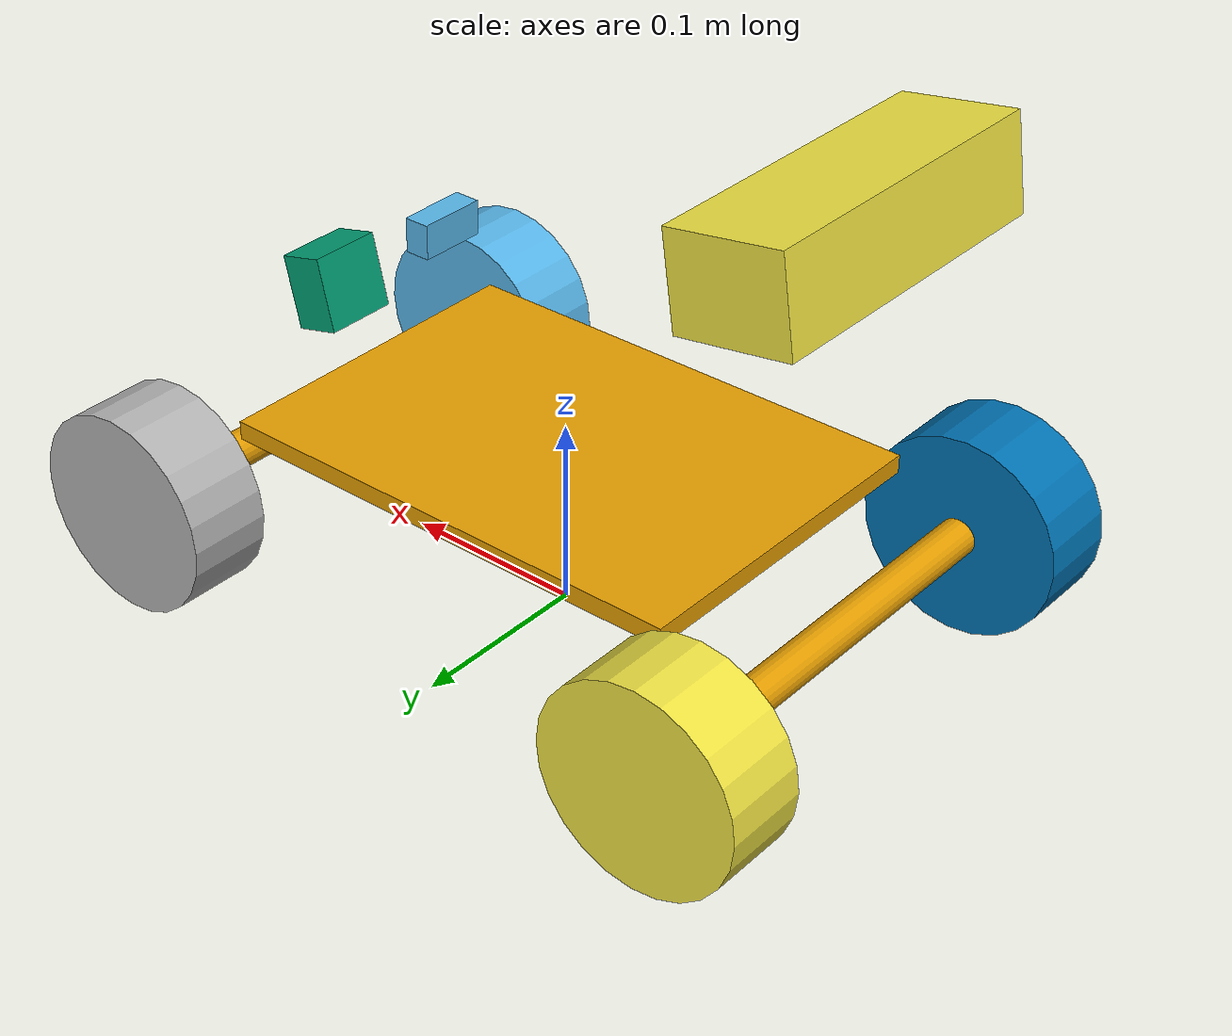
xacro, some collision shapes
<?xml version="1.0"?>
<robot xmlns:xacro="https://www.ros.org/wiki/xacro" name="slash">
  <!-- helper -->
  <xacro:macro name="visual_collision" params="**content">
    <visual>
      <xacro:insert_block name="content" />
    </visual>
    <collision>
      <xacro:insert_block name="content" />
    </collision>
  </xacro:macro>

  <!-- common properties -->
  <xacro:property name="robotname" value="slash" />
  <xacro:property name="width" value="0.296" />
  <xacro:property name="length" value="0.525" />
  <xacro:property name="weight" value="2.16" />

  <!-- chassis properties -->
  <xacro:property name="chassis_ground_clearance" value="0.089" />
  <xacro:property name="chassis_length" value="0.265" />
  <xacro:property name="chassis_width" value="0.185" />
  <xacro:property name="chassis_height" value="0.01" />
  <xacro:property name="chassis_weight" value="${weight - 4 * wheel_weight}" />

  <!-- axle properties -->
  <xacro:property name="axle_radius" value="0.01" />

  <!-- wheel properties -->
  <xacro:property name="wheel_wheelbase" value="0.325" />
  <xacro:property name="wheel_radius" value=".054" />
  <xacro:property name="wheel_width" value=".045" />
  <xacro:property name="wheel_weight" value="0.2" />

  <!-- camera properties -->
  <xacro:property name="camera_pos" value="0.155 0 0.127" />
  <xacro:property name="camera_height" value="0.04" />
  <xacro:property name="camera_width" value="0.04" />
  <xacro:property name="camera_length" value="0.025" />
  <xacro:property name="camera_weight" value="0.07" />

  <!-- 3D camera properties -->
  <xacro:property name="depth_camera_pos" value="${-chassis_width+0.03} 0 ${chassis_ground_clearance + 0.175}" />

  <!-- ultrasound sensor properties -->
  <xacro:property name="ultrasound_pos" value="0.155 -0.08 0.127" />
  <xacro:property name="ultrasound_height" value="0.02" />
  <xacro:property name="ultrasound_width" value="0.04" />
  <xacro:property name="ultrasound_length" value="0.015" />
  <xacro:property name="ultrasound_weight" value="0.07" />

  <!-- IMU -->
  <xacro:property name="imu_pos" value="-0.09 -0.01 0.135" />

  <!-- WheelEncoder -->
  <xacro:property name="wheel_encoder_pos" value="${-wheel_wheelbase / 2} ${-(width - wheel_width) / 2} ${wheel_radius}" />

  <!-- wheel -->
  <xacro:macro name="wheel" params="pos_name pos_x pos_y steering">
    <link name="wheel_${pos_name}">
      <inertial>
        <mass value="${wheel_weight}"/>
        <inertia
          ixx="${(wheel_weight / 12) * (3 * wheel_radius ** 2 + wheel_width ** 2)}" ixy="0.0" ixz="0.0"
          iyy="${(wheel_weight / 12) * (3 * wheel_radius ** 2 + wheel_width ** 2)}" iyz="0.0"
          izz="${(wheel_weight / 12) * (6 * wheel_radius ** 2)}" />
      </inertial>
      <xacro:visual_collision>
        <content>
          <geometry>
            <cylinder length="${wheel_width}" radius="${wheel_radius}" />
          </geometry>
        </content>
      </xacro:visual_collision>
    </link>
    <xacro:if value="${steering}">
      <link name="wheel_${pos_name}_steering_axle">
        <inertial>
          <mass value="0.001" />
          <inertia
            ixx="${(wheel_weight / 12) * (3 * wheel_radius ** 2 + wheel_width ** 2)}" ixy="0.0" ixz="0.0"
            iyy="${(wheel_weight / 12) * (3 * wheel_radius ** 2 + wheel_width ** 2)}" iyz="0.0"
            izz="${(wheel_weight / 12) * (6 * wheel_radius ** 2)}" />
        </inertial>
      </link>
      <joint name="wheel_${pos_name}_steering_joint" type="revolute">
        <origin xyz="${pos_x} ${pos_y} ${wheel_radius}" rpy="1.5707 0 0" />
        <parent link="base_link" />
        <child link="wheel_${pos_name}_steering_axle" />
        <axis xyz="0 1 0" />
        <limit lower="-0.785398163" upper="0.785398163" effort="30" velocity="1.0" />
      </joint>
    </xacro:if>
    <joint name="wheel_${pos_name}_chassis_joint" type="continuous">
      <xacro:if value="${not steering}">
        <origin xyz="${pos_x} ${pos_y} ${wheel_radius}" rpy="1.5707 0 0" />
      </xacro:if>
      <xacro:if value="${steering}">
        <origin xyz="0 0 0" rpy="0 0 0" />
      </xacro:if>
      <xacro:if value="${not steering}">
        <parent link="base_link" />
      </xacro:if>
      <xacro:if value="${steering}">
        <parent link="wheel_${pos_name}_steering_axle" />
      </xacro:if>
      <child link="wheel_${pos_name}" />
      <axis xyz="0 0 -1" />
    </joint>
  </xacro:macro>

  <!-- chassis -->
  <link name="base_link">
    <inertial>
      <origin xyz="0 0 ${chassis_ground_clearance}" rpy="0 0 0" />
      <mass value="${chassis_weight}" />
      <inertia
        ixx="${(chassis_weight / 12) * (chassis_width ** 2 + chassis_height ** 2)}" ixy="0.0" ixz="0.0"
        iyy="${(chassis_weight / 12) * (chassis_length ** 2 + chassis_height ** 2)}" iyz="0.0"
        izz="${(chassis_weight / 12) * (chassis_length ** 2 + chassis_width ** 2)}" />
    </inertial>
    <xacro:visual_collision> <!-- main plate -->
      <content>
        <origin xyz="0 0 ${chassis_ground_clearance}" />
        <geometry>
          <box size="${chassis_length} ${chassis_width} ${chassis_height}"/>
        </geometry>
      </content>
    </xacro:visual_collision>
    <xacro:visual_collision> <!-- rear axle -->
      <content>
        <origin xyz="${-wheel_wheelbase / 2} 0 ${wheel_radius}" rpy="1.5707 0 0" />
        <geometry>
          <cylinder length="${width - 2 * wheel_width}" radius="${axle_radius}" />
        </geometry>
      </content>
    </xacro:visual_collision>
    <xacro:visual_collision> <!-- front axle -->
      <content>
        <origin xyz="${wheel_wheelbase / 2} 0 ${wheel_radius}" rpy="1.5707 0 0" />
        <geometry>
          <cylinder length="${width - 2 * wheel_width}" radius="${axle_radius}" />
        </geometry>
      </content>
    </xacro:visual_collision>
  </link>

  <!-- ultrasound sensor -->
  <link name="ultrasound_link">
    <inertial>
      <origin xyz="0 0 0" rpy="0 0 0" />
      <mass value="${ultrasound_weight}" />
      <inertia
        ixx="${(ultrasound_weight / 12) * (ultrasound_width ** 2 + ultrasound_height ** 2)}" ixy="0.0" ixz="0.0"
        iyy="${(ultrasound_weight / 12) * (ultrasound_length ** 2 + ultrasound_height ** 2)}" iyz="0.0"
        izz="${(ultrasound_weight / 12) * (ultrasound_length ** 2 + ultrasound_width ** 2)}" />
    </inertial>
    <xacro:visual_collision>
      <content>
        <origin xyz="0 0 0" rpy="0 0 0" />
        <geometry>
          <box size="${ultrasound_length} ${ultrasound_width} ${ultrasound_height}" />
        </geometry>
      </content>
    </xacro:visual_collision>
  </link>

  <joint name="ultrasound_joint" type="fixed">
    <origin xyz="${ultrasound_pos}" rpy="0 0 0" />
    <parent link="base_link" />
    <child link="ultrasound_link" />
  </joint>

  <gazebo reference="ultrasound_link">
    <sensor type="ray" name="ultrasound_sensor">
      <pose>0 0 0 0 0 0</pose>
      <always_on>true</always_on>
      <visualize>true</visualize>
      <topic>/ultrasound/range</topic>
      <update_rate>50</update_rate>
      <ray>
        <scan>
          <horizontal>
            <samples>5</samples>
            <resolution>1.000000</resolution>
            <min_angle>-0.12</min_angle>
            <max_angle>0.12</max_angle>
          </horizontal>
          <vertical>
            <samples>5</samples>
            <resolution>1.000000</resolution>
            <min_angle>-0.01</min_angle>
            <max_angle>0.01</max_angle>
          </vertical>
        </scan>
        <range>
          <min>0.02</min>
          <max>2</max>
          <resolution>0.01</resolution>
        </range>
      </ray>
      <plugin name="ultrasound_sensor" filename="libgazebo_ros_ray_sensor.so">
        <ros>
          <namespace>/ultrasound</namespace>
          <remapping>~/out:=range</remapping>
        </ros>
        <output_type>sensor_msgs/Range</output_type>
        <min_intensity>100.0</min_intensity>
        <frame_name>ultrasound_link</frame_name>
        <radiation_type>ultrasound</radiation_type>
      </plugin>
    </sensor>
  </gazebo>

  <!-- camera -->
  <link name="camera_link">
    <inertial>
      <origin xyz="0 0 0" rpy="0 0.24 0" />
      <mass value="${camera_weight}" />
      <inertia
        ixx="${(camera_weight / 12) * (camera_width ** 2 + camera_height ** 2)}" ixy="0.0" ixz="0.0"
        iyy="${(camera_weight / 12) * (camera_length ** 2 + camera_height ** 2)}" iyz="0.0"
        izz="${(camera_weight / 12) * (camera_length ** 2 + camera_width ** 2)}" />
    </inertial>
    <xacro:visual_collision>
      <content>
        <origin xyz="0 0 0" rpy="0 0.24 0" />
        <geometry>
          <box size="${camera_length} ${camera_width} ${camera_height}" />
        </geometry>
      </content>
    </xacro:visual_collision>
  </link>
  <!-- https://classic.gazebosim.org/tutorials?tut=ros_gzplugins&cat=connect_ros#Camera -->
  <gazebo reference="camera_link">
    <sensor type="camera" name="camera_sensor1">
      <update_rate>30.0</update_rate>
      <camera name="head">
        <horizontal_fov>1.67552</horizontal_fov>
        <image>
          <width>640</width>
          <height>480</height>
          <format>R8G8B8</format>
        </image>
        <clip>
          <near>0.02</near>
          <far>300</far>
        </clip>
        <noise>
          <type>gaussian</type>
          <mean>0.0</mean>
          <stddev>0.007</stddev>
        </noise>
      </camera>
      <plugin name="camera_controller" filename="libgazebo_ros_camera.so">
        <alwaysOn>true</alwaysOn>
      </plugin>
    </sensor>
  </gazebo>

  <joint name="camera_joint" type="fixed">
    <origin xyz="${camera_pos}" rpy="0 0 0" />
    <parent link="base_link" />
    <child link="camera_link" />
  </joint>

  <!-- 3D camera from https://github.com/osrf/gazebo_models/blob/master/orbbec_astra_camera/model.sdf -->
  <link name="depth_camera_link">
    <inertial>
      <origin xyz="0 0 0" rpy="0 0 0" />
      <mass value="0.22" />
      <inertia
        ixx="0.000513887" ixy="0.0" ixz="0.0"
        iyy="0.00008685" iyz="0.0"
        izz="0.00050009" />
    </inertial>
    <collision>
      <geometry>
        <box size="0.06 0.17 0.048" />
      </geometry>
    </collision>
    <visual>
      <geometry>
        <mesh filename="model://orbbec_astra_camera/meshes/orbbec_astra_camera.dae" />
      </geometry>
    </visual>
  </link>

  <gazebo reference="depth_camera_link">
    <sensor name="depth_camera" type="depth">
      <pose>0.035 0.015 0.008 0 0 0</pose>
      <update_rate>30</update_rate>
      <camera>
        <horizontal_fov>1.0472</horizontal_fov>
        <image>
          <width>640</width>
          <height>480</height>
          <format>R8G8B8</format>
        </image>
        <clip>
          <near>0.6</near>
          <far>8</far>
        </clip>
      </camera>

      <plugin name="depth_camera_controller" filename="libgazebo_ros_camera.so">
        <alwaysOn>true</alwaysOn>
        <frame_name>camera_depth_link_optical</frame_name>
      </plugin>
    </sensor>
  </gazebo>

  <joint name="camera_depth_optical_joint" type="fixed">
    <!-- these values have to be these values otherwise the gazebo camera
        image won't be aligned properly with the frame it is supposedly
        originating from-->
    <origin xyz="0 0 0" rpy="${-pi/2} 0 ${-pi/2}"/>
    <parent link="depth_camera_link"/>
    <child link="camera_depth_link_optical"/>
  </joint>

  <link name="camera_depth_link_optical">
  </link>

  <joint name="depth_camera_joint" type="fixed">
    <origin xyz="${depth_camera_pos}" rpy="0 0.15 0" />
    <parent link="base_link" />
    <child link="depth_camera_link" />
  </joint>

  <link name="imu_link">
  </link>

  <joint name="imu_joint" type="fixed">
    <origin xyz="${imu_pos}" rpy="0 0 0" />
    <parent link="base_link" />
    <child link="imu_link" />
  </joint>

  <link name="wheel_encoder_link">
  </link>

  <joint name="wheel_encoder_joint" type="fixed">
    <origin xyz="${wheel_encoder_pos}" rpy="0 0 0" />
    <parent link="base_link" />
    <child link="wheel_encoder_link" />
  </joint>

  <gazebo reference="depth_camera_joint">
    <preserveFixedJoint>true</preserveFixedJoint>
  </gazebo>

  <xacro:wheel
    pos_name="front_left"
    pos_x="${wheel_wheelbase / 2}"
    pos_y="${(width - wheel_width) / 2}"
    steering="true">
  </xacro:wheel>
  <xacro:wheel
    pos_name="front_right"
    pos_x="${wheel_wheelbase / 2}"
    pos_y="${-(width - wheel_width) / 2}"
    steering="true">
  </xacro:wheel>
  <xacro:wheel
    pos_name="rear_left"
    pos_x="${-wheel_wheelbase / 2}"
    pos_y="${(width - wheel_width) / 2}"
    steering="false">
  </xacro:wheel>
  <xacro:wheel
    pos_name="rear_right"
    pos_x="${-wheel_wheelbase / 2}"
    pos_y="${-(width - wheel_width) / 2}"
    steering="false">
  </xacro:wheel>

  <gazebo>
    <plugin name="gazebo_ros_ackermann_drive" filename="libgazebo_ros_ackermann_drive.so">

      <update_rate>100.0</update_rate>

      <!-- wheels -->
      <front_left_joint>wheel_front_left_chassis_joint</front_left_joint>
      <front_right_joint>wheel_front_right_chassis_joint</front_right_joint>
      <rear_left_joint>wheel_rear_left_chassis_joint</rear_left_joint>
      <rear_right_joint>wheel_rear_right_chassis_joint</rear_right_joint>
      <left_steering_joint>wheel_front_left_steering_joint</left_steering_joint>
      <right_steering_joint>wheel_front_right_steering_joint</right_steering_joint>

      <!-- Max absolute steer angle for tyre in radians-->
      <!-- Any cmd_vel angular z greater than this would be capped -->
      <max_steer>0.7854</max_steer>

      <!-- Max absolute steering angle of steering wheel -->
      <max_steering_angle>7.85</max_steering_angle>

      <!-- Max absolute linear speed in m/s -->
      <max_speed>14</max_speed>

      <!-- PID tuning -->
      <left_steering_pid_gain>1 0 0</left_steering_pid_gain>
      <left_steering_i_range>0 0</left_steering_i_range>
      <right_steering_pid_gain>1 0 0</right_steering_pid_gain>
      <right_steering_i_range>0 0</right_steering_i_range>
      <linear_velocity_pid_gain>0.5 2 0</linear_velocity_pid_gain>
      <linear_velocity_i_range>0 0</linear_velocity_i_range>

      <!-- output -->
      <publish_odom>true</publish_odom>
      <publish_odom_tf>true</publish_odom_tf>
      <publish_wheel_tf>true</publish_wheel_tf>
      <publish_distance>true</publish_distance>

      <odometry_frame>odom</odometry_frame>
      <robot_base_frame>base_link</robot_base_frame>

    </plugin>
  </gazebo>
</robot>
